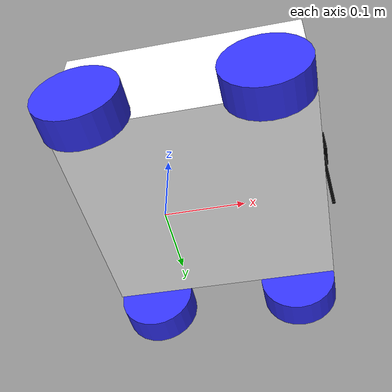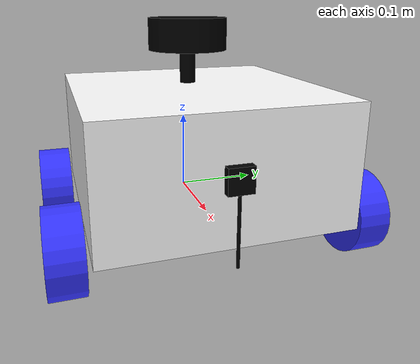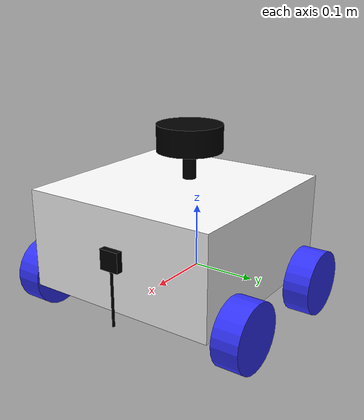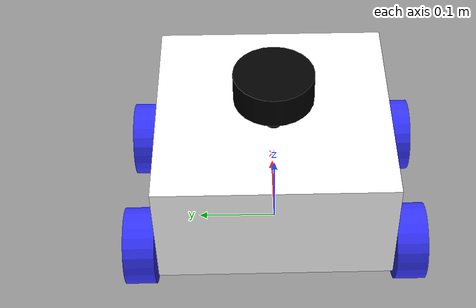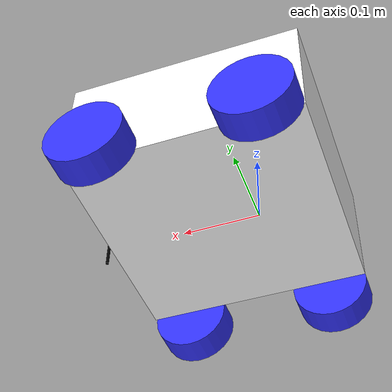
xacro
<?xml version="1.0"?>
<robot xmlns:xacro="http://www.ros.org/wiki/xacro"  name="robot">

    <!-- Example link -->
    <xacro:include filename="robot_core.xacro" />
    <xacro:include filename="gazebo_control.xacro" />
    <xacro:include filename="lidar.xacro" />
    <xacro:include filename="camera.xacro" />
</robot>

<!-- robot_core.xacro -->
<robot xmlns:xacro="http://www.ros.org/wiki/xacro" name="robot">

	<xacro:include filename="inertial_macros.xacro" />
	<!-- color and textures -->

	<material name="white">
		<color rgba="1 1 1 1" />
	</material>
	<material name="orange">
		<color rgba="1 .3 .1 1" />
	</material>
	<material name="blue">
		<color rgba=".2 .2 1 1" />
	</material>
	<material name="black">
		<color rgba="0 0 0 1" />
	</material>

	<!-- base link -->

	<link name="base_link">

	</link>

	<!-- BASE_FOOTPRINT LINK -->

        <joint name="base_footprint_joint" type="fixed">
	    <parent link="base_link"/>
	    <child link="base_footprint"/>
	    <origin xyz="0 0 0" rpy="0 0 0"/>
        </joint>

        <link name="base_footprint">
        </link>

	<!-- chassis link -->

	<joint name="chassis_joint" type="fixed">
		<parent link="base_link"/>
		<child link="chassis"/>
		<origin xyz="-0.1 0 0"/>
	</joint>

	<link name="chassis">
		<visual>
			<origin xyz =".15 0 0.075"/>
			<geometry>
				<box size="0.3 0.3 .15"/>
			</geometry>
			<material name="white"/>
		</visual>
		<collision>
			<origin xyz =".15 0 0.075"/>
			<geometry>
				<box size="0.3 0.3 .15"/>
			</geometry>
		</collision>
		<xacro:inertial_box mass="0.5" x="0.3" y="0.3" z="0.15">
			<origin xyz="0.15 0 0.075" rpy="0 0 0"/>
		</xacro:inertial_box>
	</link>
	<gazebo reference="chassis">
		<material>Gazebo/White</material>
	</gazebo>
	<!-- left wheel -->

	<joint name="left_wheel_joint" type="continuous">
		<parent link="base_link"/>
		<child link="left_wheel"/>
		<origin xyz="-0.05 0.175 0" rpy="-${pi/2} 0 0" />
		<axis  xyz="0 0 1"/>
	</joint>
	<link name="left_wheel">
		<visual>
			<geometry>
				<cylinder radius="0.05" length="0.04"/>
			</geometry>
			<material name="blue"/>
		</visual>
		<collision>
			<geometry>
				<cylinder radius="0.05" length="0.04"/>
			</geometry>
		</collision>
		<xacro:inertial_cylinder mass="0.1" length="0.04" radius="0.05">
			<origin xyz="0 0 0" rpy="0 0 0"/>
		</xacro:inertial_cylinder>
	</link>

	<gazebo reference="left_wheel">
		<material>Gazebo/Black</material>
	</gazebo>
	<!-- right wheel -->

	<joint name="right_wheel_joint" type="continuous">
		<parent link="base_link"/>
		<child link="right_wheel"/>
		<origin xyz="-0.05 -0.175 0" rpy="${pi/2} 0 0" />
		<axis  xyz="0 0 -1"/>
	</joint>
	<link name="right_wheel">
		<visual>
			<geometry>
				<cylinder radius="0.05" length="0.04"/>
			</geometry>
			<material name="blue"/>
		</visual>
		<collision>
			<geometry>
				<cylinder radius="0.05" length="0.04"/>
			</geometry>
		</collision>
		<xacro:inertial_cylinder mass="0.1" length="0.04" radius="0.05">
			<origin xyz="0 0 0" rpy="0 0 0"/>
		</xacro:inertial_cylinder>
	</link>
	<gazebo reference="right_wheel">
		<material>Gazebo/Black</material>
	</gazebo>
	<!-- caster wheel boys -->

	<joint name="cw_right_joint" type="fixed">
		<parent link="chassis"/>
		<child link="cw_right"/>
		<origin xyz=".25 -0.175 0" rpy="${pi/2} 0 0" />
	</joint>
	<link name="cw_right">
		<visual>
			<geometry>
				<cylinder radius="0.05" length="0.04"/>
			</geometry>
			<material name="blue"/>
		</visual>
		<collision>
			<geometry>
				<cylinder radius="0.05" length="0.04"/>
			</geometry>
		</collision>
		<xacro:inertial_cylinder mass="0.1" length="0.04" radius="0.05">
			<origin xyz="0 0 0" rpy="0 0 0"/>
		</xacro:inertial_cylinder>
	</link>
	<gazebo reference="cw_right">
		<material>Gazebo/Black</material>
		<mu1 value="0.001" />
		<mu2 value="0.001" />
	</gazebo>
	<joint name="cw_left_joint" type="fixed">
		<parent link="chassis"/>
		<child link="cw_left"/>
		<origin xyz=".25 0.175 0" rpy="${pi/2} 0 0" />
	</joint>

	<link name="cw_left">
		<visual>
			<geometry>
				<cylinder radius="0.05" length="0.04"/>
			</geometry>
			<material name="blue"/>
		</visual>
		<collision>
			<geometry>
				<cylinder radius="0.05" length="0.04"/>
			</geometry>
		</collision>
		<xacro:inertial_cylinder mass="0.1" length="0.04" radius="0.05">
			<origin xyz="0 0 0" rpy="0 0 0"/>
		</xacro:inertial_cylinder>
	</link>
	<gazebo reference="cw_left">
		<material>Gazebo/Black</material>
		<mu1 value="0.001" />
		<mu2 value="0.001" />
	</gazebo>
</robot>

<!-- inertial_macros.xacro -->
<robot xmlns:xacro="http://www.ros.org/wiki/xacro" name="robot">

    <!-- Specify some standard inertial calculations https://en.wikipedia.org/wiki/List_of_moments_of_inertia -->
    <!-- These make use of xacro's mathematical functionality -->

    <xacro:macro name="inertial_sphere" params="mass radius *origin">
        <inertial>
            <xacro:insert_block name="origin"/>
            <mass value="${mass}" />
            <inertia ixx="${(2/5) * mass * (radius*radius)}" ixy="0.0" ixz="0.0"
                    iyy="${(2/5) * mass * (radius*radius)}" iyz="0.0"
                    izz="${(2/5) * mass * (radius*radius)}" />
        </inertial>
    </xacro:macro>

    <xacro:macro name="inertial_box" params="mass x y z *origin">
        <inertial>
            <xacro:insert_block name="origin"/>
            <mass value="${mass}" />
            <inertia ixx="${(1/12) * mass * (y*y+z*z)}" ixy="0.0" ixz="0.0"
                    iyy="${(1/12) * mass * (x*x+z*z)}" iyz="0.0"
                    izz="${(1/12) * mass * (x*x+y*y)}" />
        </inertial>
    </xacro:macro>

    <xacro:macro name="inertial_cylinder" params="mass length radius *origin">
        <inertial>
            <xacro:insert_block name="origin"/>
            <mass value="${mass}" />
            <inertia ixx="${(1/12) * mass * (3*radius*radius + length*length)}" ixy="0.0" ixz="0.0"
                    iyy="${(1/12) * mass * (3*radius*radius + length*length)}" iyz="0.0"
                    izz="${(1/2) * mass * (radius*radius)}" />
        </inertial>
    </xacro:macro>

</robot>

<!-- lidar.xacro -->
<robot xmlns:xacro="http://www.ros.org/wiki/xacro">

    <joint name="laser_joint" type="fixed">
        <parent link="chassis"/>
        <child link="laser_frame"/>
        <origin xyz="0.122 0 0.212" rpy="0 0 0"/>
    </joint>

    <link name="laser_frame">
        <visual>
            <geometry>
                <cylinder radius="0.05" length="0.04"/>
            </geometry>
            <material name="black"/>
        </visual>
        <visual>
            <origin xyz="0 0 -0.05"/>
            <geometry>
                <cylinder radius="0.01" length="0.1"/>
            </geometry>
            <material name="black"/>
        </visual>
        <collision>
            <geometry>
                <cylinder radius="0.05" length="0.04"/>
            </geometry>
        </collision>
        <xacro:inertial_cylinder mass="0.1" length="0.04" radius="0.05">
            <origin xyz="0 0 0" rpy="0 0 0"/>
        </xacro:inertial_cylinder>
    </link>

    <gazebo reference="laser_frame">
        <material>Gazebo/Black</material>

        <sensor name="laser" type="ray">
            <pose> 0 0 0 0 0 0 </pose>
            <visualize>False</visualize>
            <update_rate>10</update_rate>
            <ray>
                <scan>
                    <horizontal>
                        <samples>360</samples>
                        <min_angle>-3.14</min_angle>
                        <max_angle>3.14</max_angle>
                    </horizontal>
                </scan>
                <range>
                    <min>0.3</min>
                    <max>12</max>
                </range>
            </ray>
            <plugin name="laser_controller" filename="libgazebo_ros_ray_sensor.so">
                <ros>
                    <argument>~/out:=scan</argument>
                </ros>
                <output_type>sensor_msgs/LaserScan</output_type>
                <frame_name>laser_frame</frame_name>
            </plugin>
        </sensor>
    </gazebo>

</robot>

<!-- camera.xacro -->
<robot xmlns:xacro="http://www.ros.org/wiki/xacro">

    <joint name="camera_joint" type="fixed">
        <parent link="chassis"/>
        <child link="camera_link"/>
        <origin xyz="0.305 0 0.08" rpy="0 0 0"/>
    </joint>

    <link name="camera_link">
        <visual>
            <geometry>
                <box size="0.010 0.03 0.03"/>
            </geometry>
            <material name="black"/>
        </visual>
        <visual>
            <origin xyz="0 0 -0.05"/>
            <geometry>
                <cylinder radius="0.002" length="0.1"/>
            </geometry>
            <material name="black"/>
        </visual>
    </link>

    <joint name="camera_optical_joint" type="fixed">
        <parent link="camera_link"/>
        <child link="camera_link_optical"/>
        <origin xyz="0 0 0" rpy="${-pi/2} 0 ${-pi/2}"/>
    </joint>

    <link name="camera_link_optical"></link>

    <gazebo reference="camera_link">
        <material>Gazebo/Black</material>

        <sensor name="camera" type="camera">
            <pose> 0 0 0 0 0 0 </pose>
            <visualize>true</visualize>
            <update_rate>10</update_rate>
            <camera>
                <horizontal_fov>1.089</horizontal_fov>
                <image>
                    <format>R8G8B8</format>
                    <width>640</width>
                    <height>480</height>
                </image>
                <clip>
                    <near>0.05</near>
                    <far>8.0</far>
                </clip>
            </camera>
            <plugin name="camera_controller" filename="libgazebo_ros_camera.so">
                <frame_name>camera_link_optical</frame_name>
            </plugin>
        </sensor>
    </gazebo>

</robot>
